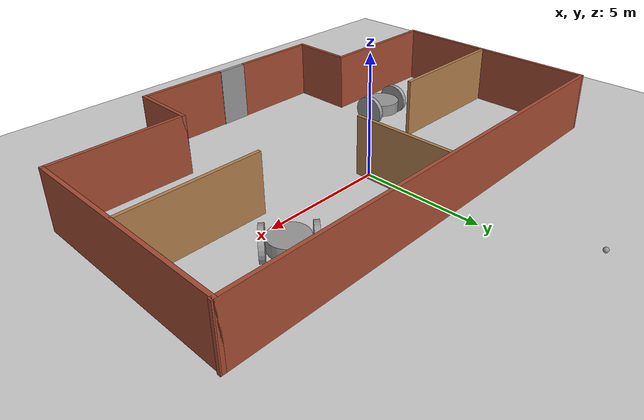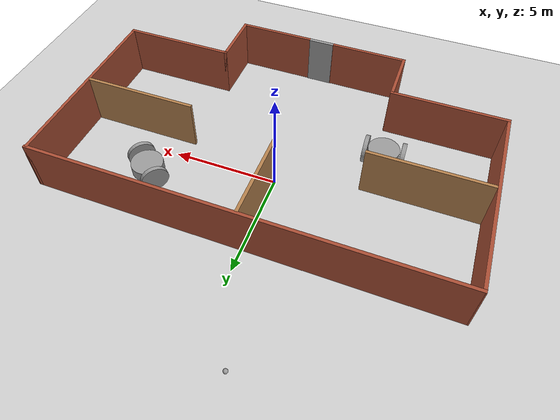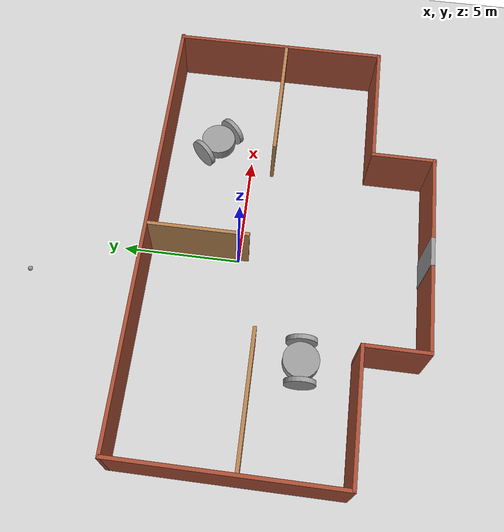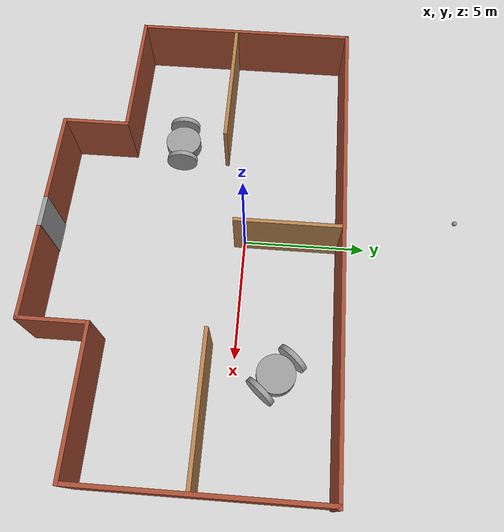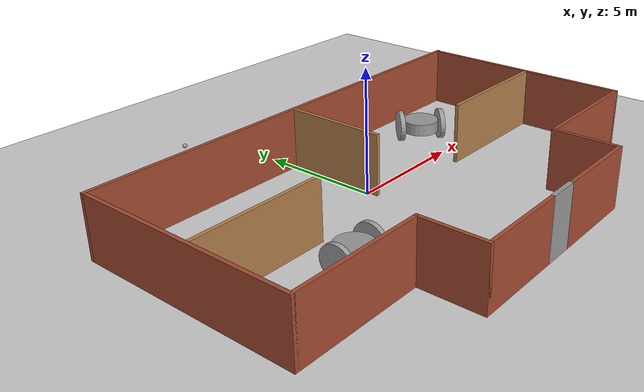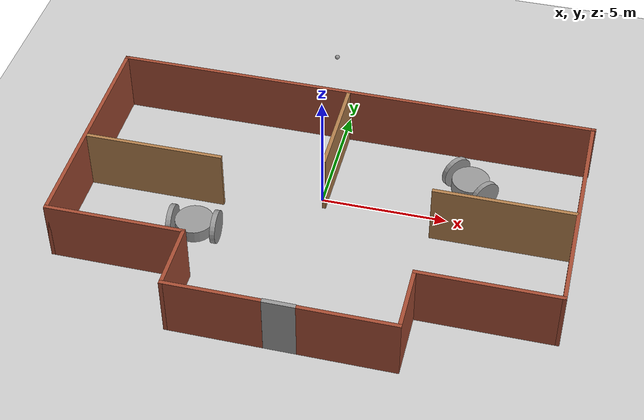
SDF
<sdf version="1.6">
 <world name="default">
  <plugin name="hello" filename="libhello.so"/>
  <light name="sun" type="directional">
   <pose>0 0 10 0 -0 0</pose>
   <diffuse>0.8 0.8 0.8 1</diffuse>
   <specular>0.2 0.2 0.2 1</specular>
   <attenuation>
    <range>1000</range>
    <constant>0.9</constant>
    <linear>0.01</linear>
    <quadratic>0.001</quadratic>
   </attenuation>
   <direction>-0.5 0.1 -0.9</direction>
  </light>
  <model name="ground_plane">
   <static>1</static>
   <link name="link">
    <collision name="collision">
     <geometry><plane><normal>0 0 1</normal><size>100 100</size></plane></geometry>
     <surface>
      <contact><collide_bitmask>65535</collide_bitmask></contact>
      <friction><ode><mu>100</mu><mu2>50</mu2></ode></friction>
     </surface>
    </collision>
    <visual name="visual">
     <cast_shadows>0</cast_shadows>
     <geometry><plane><normal>0 0 1</normal><size>100 100</size></plane></geometry>
     <material>
      <script><uri>file://media/materials/scripts/gazebo.material</uri><name>Gazebo/Grey</name></script>
     </material>
    </visual>
   </link>
  </model>
  <gravity>0 0 -9.8</gravity>
  <magnetic_field>6e-06 2.3e-05 -4.2e-05</magnetic_field>
  <atmosphere type="adiabatic"/>
  <physics name="default_physics" default="0" type="ode">
   <max_step_size>0.001</max_step_size>
   <real_time_factor>1</real_time_factor>
   <real_time_update_rate>1000</real_time_update_rate>
  </physics>
  <scene><ambient>0.4 0.4 0.4 1</ambient><background>0.7 0.7 0.7 1</background><shadows>1</shadows></scene>
  <spherical_coordinates>
   <surface_model>EARTH_WGS84</surface_model>
   <latitude_deg>0</latitude_deg>
   <longitude_deg>0</longitude_deg>
   <elevation>0</elevation>
   <heading_deg>0</heading_deg>
  </spherical_coordinates>
  <model name="Building">
   <pose>0.377101 -1.96916 0 0 -0 0</pose>
   <link name="Door_2">
    <collision name="Door_2_Collision">
     <geometry><box><size>1.25 0.17 2.5</size></box></geometry>
     <pose>0 0 1.25 0 -0 0</pose>
    </collision>
    <visual name="Door_2_Visual">
     <pose>0 0 1.25 0 -0 0</pose>
     <geometry><box><size>1.25 0.17 2.5</size></box></geometry>
     <material>
      <script><uri>file://media/materials/scripts/gazebo.material</uri><name>Gazebo/Grey</name></script>
     </material>
    </visual>
    <pose>-0.023717 -5.83901 0 0 -0 0</pose>
   </link>
   <link name="Wall_111">
    <collision name="Wall_111_Collision">
     <geometry><box><size>9.25 0.15 2.5</size></box></geometry>
     <pose>0 0 1.25 0 -0 0</pose>
    </collision>
    <visual name="Wall_111_Visual">
     <pose>0 0 1.25 0 -0 0</pose>
     <geometry><box><size>9.25 0.15 2.5</size></box></geometry>
     <material>
      <script><uri>file://media/materials/scripts/gazebo.material</uri><name>Gazebo/Bricks</name></script>
      <ambient>1 1 1 1</ambient>
     </material>
     <meta><layer>0</layer></meta>
    </visual>
    <pose>-9.675 1.3 0 0 0 -1.5708</pose>
   </link>
   <link name="Wall_112">
    <collision name="Wall_112_Collision">
     <geometry><box><size>5.5 0.15 2.5</size></box></geometry>
     <pose>0 0 1.25 0 -0 0</pose>
    </collision>
    <visual name="Wall_112_Visual">
     <pose>0 0 1.25 0 -0 0</pose>
     <geometry><box><size>5.5 0.15 2.5</size></box></geometry>
     <material>
      <script><uri>file://media/materials/scripts/gazebo.material</uri><name>Gazebo/Bricks</name></script>
      <ambient>1 1 1 1</ambient>
     </material>
     <meta><layer>0</layer></meta>
    </visual>
    <pose>-7 -3.25 0 0 -0 0</pose>
   </link>
   <link name="Wall_113">
    <collision name="Wall_113_Collision">
     <geometry><box><size>2.75 0.15 2.5</size></box></geometry>
     <pose>0 0 1.25 0 -0 0</pose>
    </collision>
    <visual name="Wall_113_Visual">
     <pose>0 0 1.25 0 -0 0</pose>
     <geometry><box><size>2.75 0.15 2.5</size></box></geometry>
     <material>
      <script><uri>file://media/materials/scripts/gazebo.material</uri><name>Gazebo/Bricks</name></script>
      <ambient>1 1 1 1</ambient>
     </material>
     <meta><layer>0</layer></meta>
    </visual>
    <pose>-4.325 -4.55 0 0 0 -1.5708</pose>
   </link>
   <link name="Wall_115">
    <collision name="Wall_115_Collision">
     <geometry><box><size>2.75 0.15 2.5</size></box></geometry>
     <pose>0 0 1.25 0 -0 0</pose>
    </collision>
    <visual name="Wall_115_Visual">
     <pose>0 0 1.25 0 -0 0</pose>
     <geometry><box><size>2.75 0.15 2.5</size></box></geometry>
     <material>
      <script><uri>file://media/materials/scripts/gazebo.material</uri><name>Gazebo/Bricks</name></script>
      <ambient>1 1 1 1</ambient>
     </material>
     <meta><layer>0</layer></meta>
    </visual>
    <pose>4.275 -4.55 0 0 -0 1.5708</pose>
   </link>
   <link name="Wall_117">
    <collision name="Wall_117_Collision">
     <geometry><box><size>5.5 0.15 2.5</size></box></geometry>
     <pose>0 0 1.25 0 -0 0</pose>
    </collision>
    <visual name="Wall_117_Visual">
     <pose>0 0 1.25 0 -0 0</pose>
     <geometry><box><size>5.5 0.15 2.5</size></box></geometry>
     <material>
      <script><uri>file://media/materials/scripts/gazebo.material</uri><name>Gazebo/Bricks</name></script>
      <ambient>1 1 1 1</ambient>
     </material>
     <meta><layer>0</layer></meta>
    </visual>
    <pose>6.95 -3.25 0 0 -0 0</pose>
   </link>
   <link name="Wall_119">
    <collision name="Wall_119_Collision">
     <geometry><box><size>9.25 0.15 2.5</size></box></geometry>
     <pose>0 0 1.25 0 -0 0</pose>
    </collision>
    <visual name="Wall_119_Visual">
     <pose>0 0 1.25 0 -0 0</pose>
     <geometry><box><size>9.25 0.15 2.5</size></box></geometry>
     <material>
      <script><uri>file://media/materials/scripts/gazebo.material</uri><name>Gazebo/Bricks</name></script>
      <ambient>1 1 1 1</ambient>
     </material>
     <meta><layer>0</layer></meta>
    </visual>
    <pose>9.625 1.3 0 0 -0 1.5708</pose>
   </link>
   <link name="Wall_121">
    <collision name="Wall_121_Collision">
     <geometry><box><size>19.5 0.15 2.5</size></box></geometry>
     <pose>0 0 1.25 0 -0 0</pose>
    </collision>
    <visual name="Wall_121_Visual">
     <pose>0 0 1.25 0 -0 0</pose>
     <geometry><box><size>19.5 0.15 2.5</size></box></geometry>
     <material>
      <script><uri>file://media/materials/scripts/gazebo.material</uri><name>Gazebo/Bricks</name></script>
      <ambient>1 1 1 1</ambient>
     </material>
     <meta><layer>0</layer></meta>
    </visual>
    <pose>0 5.85 0 0 -0 0</pose>
   </link>
   <link name="Wall_123">
    <collision name="Wall_123_Collision">
     <geometry><box><size>3.75 0.15 2.5</size></box></geometry>
     <pose>0 0 1.25 0 -0 0</pose>
    </collision>
    <visual name="Wall_123_Visual">
     <pose>0 0 1.25 0 -0 0</pose>
     <geometry><box><size>3.75 0.15 2.5</size></box></geometry>
     <material>
      <script><uri>file://media/materials/scripts/gazebo.material</uri><name>Gazebo/Bricks</name></script>
      <ambient>1 1 1 1</ambient>
     </material>
     <meta><layer>0</layer></meta>
    </visual>
    <pose>-2.525 -5.85 0 0 -0 0</pose>
   </link>
   <link name="Wall_125">
    <collision name="Wall_125_Collision">
     <geometry><box><size>3.75 0.15 2.5</size></box></geometry>
     <pose>0 0 1.25 0 -0 0</pose>
    </collision>
    <visual name="Wall_125_Visual">
     <pose>0 0 1.25 0 -0 0</pose>
     <geometry><box><size>3.75 0.15 2.5</size></box></geometry>
     <material>
      <script><uri>file://media/materials/scripts/gazebo.material</uri><name>Gazebo/Bricks</name></script>
      <ambient>1 1 1 1</ambient>
     </material>
     <meta><layer>0</layer></meta>
    </visual>
    <pose>2.475 -5.85 0 0 -0 3.14159</pose>
   </link>
   <link name="Wall_129">
    <collision name="Wall_129_Collision">
     <geometry><box><size>4.25 0.15 2.5</size></box></geometry>
     <pose>0 0 1.25 0 -0 0</pose>
    </collision>
    <visual name="Wall_129_Visual">
     <pose>0 0 1.25 0 -0 0</pose>
     <geometry><box><size>4.25 0.15 2.5</size></box></geometry>
     <material>
      <script><uri>file://media/materials/scripts/gazebo.material</uri><name>Gazebo/Wood</name></script>
      <ambient>0.435294 0.796078 0.67451 1</ambient>
     </material>
     <meta><layer>0</layer></meta>
    </visual>
    <pose>-0.218061 3.67477 0 0 0 -1.5708</pose>
   </link>
   <link name="Wall_134">
    <collision name="Wall_134_Collision">
     <geometry><box><size>5.5 0.15 2.5</size></box></geometry>
     <pose>0 0 1.25 0 -0 0</pose>
    </collision>
    <visual name="Wall_134_Visual">
     <pose>0 0 1.25 0 -0 0</pose>
     <geometry><box><size>5.5 0.15 2.5</size></box></geometry>
     <material>
      <script><uri>file://media/materials/scripts/gazebo.material</uri><name>Gazebo/Wood</name></script>
      <ambient>0.760784 0.662745 0.627451 1</ambient>
     </material>
     <meta><layer>0</layer></meta>
    </visual>
    <pose>-6.86169 0.887902 0 0 -0 0</pose>
   </link>
   <link name="Wall_136">
    <collision name="Wall_136_Collision">
     <geometry><box><size>5.5 0.15 2.5</size></box></geometry>
     <pose>0 0 1.25 0 -0 0</pose>
    </collision>
    <visual name="Wall_136_Visual">
     <pose>0 0 1.25 0 -0 0</pose>
     <geometry><box><size>5.5 0.15 2.5</size></box></geometry>
     <material>
      <script><uri>file://media/materials/scripts/gazebo.material</uri><name>Gazebo/Wood</name></script>
      <ambient>0.760784 0.662745 0.627451 1</ambient>
     </material>
     <meta><layer>0</layer></meta>
    </visual>
    <pose>6.86346 1.00246 0 0 -0 3.14159</pose>
   </link>
   <static>1</static>
  </model>
  <model name="wheel_robot">
   <link name="link_1">
    <pose>0.013313 0 -0 0 -0 0</pose>
    <inertial>
     <mass>1</mass>
     <inertia><ixx>0.145833</ixx><ixy>0</ixy><ixz>0</ixz><iyy>0.145833</iyy><iyz>0</iyz><izz>0.125</izz></inertia>
    </inertial>
    <visual name="visual">
     <geometry><cylinder><radius>0.75</radius><length>0.5</length></cylinder></geometry>
     <material>
      <lighting>1</lighting>
      <script><uri>file://media/materials/scripts/gazebo.material</uri><name>Gazebo/Grey</name></script>
      <shader type="pixel"><normal_map>__default__</normal_map></shader>
      <ambient>0.3 0.3 0.3 1</ambient>
      <diffuse>0.7 0.7 0.7 1</diffuse>
      <specular>0.01 0.01 0.01 1</specular>
      <emissive>0 0 0 1</emissive>
     </material>
    </visual>
    <collision name="collision">
     <geometry><cylinder><radius>0.75</radius><length>0.5</length></cylinder></geometry>
     <surface>
      <friction>
       <ode><mu>1</mu><mu2>1</mu2><fdir1>0 0 0</fdir1><slip1>0</slip1><slip2>0</slip2></ode>
       <torsional>
        <coefficient>1</coefficient>
        <patch_radius>0</patch_radius>
        <surface_radius>0</surface_radius>
        <use_patch_radius>1</use_patch_radius>
        <ode><slip>0</slip></ode>
       </torsional>
      </friction>
      <bounce><restitution_coefficient>0</restitution_coefficient><threshold>1e+06</threshold></bounce>
      <contact>
       <collide_without_contact>0</collide_without_contact>
       <collide_without_contact_bitmask>1</collide_without_contact_bitmask>
       <collide_bitmask>1</collide_bitmask>
       <ode>
        <soft_cfm>0</soft_cfm>
        <soft_erp>0.2</soft_erp>
        <kp>1e+13</kp>
        <kd>1</kd>
        <max_vel>0.01</max_vel>
        <min_depth>0</min_depth>
       </ode>
       <bullet>
        <split_impulse>1</split_impulse>
        <split_impulse_penetration_threshold>-0.01</split_impulse_penetration_threshold>
        <soft_cfm>0</soft_cfm>
        <soft_erp>0.2</soft_erp>
        <kp>1e+13</kp>
        <kd>1</kd>
       </bullet>
      </contact>
     </surface>
    </collision>
   </link>
   <link name="link_2">
    <pose>-0.876687 0 -0 0 -0 0</pose>
    <inertial>
     <mass>1</mass>
     <inertia><ixx>0.145833</ixx><ixy>0</ixy><ixz>0</ixz><iyy>0.145833</iyy><iyz>0</iyz><izz>0.125</izz></inertia>
    </inertial>
    <visual name="visual">
     <pose>0 0 0 0 1.5707 0</pose>
     <geometry><cylinder><radius>0.65</radius><length>0.2</length></cylinder></geometry>
     <material>
      <lighting>1</lighting>
      <script><uri>file://media/materials/scripts/gazebo.material</uri><name>Gazebo/Grey</name></script>
      <shader type="pixel"><normal_map>__default__</normal_map></shader>
      <ambient>0.3 0.3 0.3 1</ambient>
      <diffuse>0.7 0.7 0.7 1</diffuse>
      <specular>0.01 0.01 0.01 1</specular>
      <emissive>0 0 0 1</emissive>
     </material>
    </visual>
    <collision name="collision">
     <pose>0 0 0 0 1.5707 0</pose>
     <geometry><cylinder><radius>0.65</radius><length>0.2</length></cylinder></geometry>
     <surface>
      <friction>
       <ode><mu>1</mu><mu2>1</mu2><fdir1>0 0 0</fdir1><slip1>0</slip1><slip2>0</slip2></ode>
       <torsional>
        <coefficient>1</coefficient>
        <patch_radius>0</patch_radius>
        <surface_radius>0</surface_radius>
        <use_patch_radius>1</use_patch_radius>
        <ode><slip>0</slip></ode>
       </torsional>
      </friction>
      <bounce><restitution_coefficient>0</restitution_coefficient><threshold>1e+06</threshold></bounce>
      <contact>
       <collide_without_contact>0</collide_without_contact>
       <collide_without_contact_bitmask>1</collide_without_contact_bitmask>
       <collide_bitmask>1</collide_bitmask>
       <ode>
        <soft_cfm>0</soft_cfm>
        <soft_erp>0.2</soft_erp>
        <kp>1e+13</kp>
        <kd>1</kd>
        <max_vel>0.01</max_vel>
        <min_depth>0</min_depth>
       </ode>
       <bullet>
        <split_impulse>1</split_impulse>
        <split_impulse_penetration_threshold>-0.01</split_impulse_penetration_threshold>
        <soft_cfm>0</soft_cfm>
        <soft_erp>0.2</soft_erp>
        <kp>1e+13</kp>
        <kd>1</kd>
       </bullet>
      </contact>
     </surface>
    </collision>
   </link>
   <link name="link_2_clone">
    <pose>0.863376 0 -0 0 -0 0</pose>
    <inertial>
     <mass>1</mass>
     <inertia><ixx>0.145833</ixx><ixy>0</ixy><ixz>0</ixz><iyy>0.145833</iyy><iyz>0</iyz><izz>0.125</izz></inertia>
    </inertial>
    <visual name="visual">
     <pose>0 0 0 0 1.5707 0</pose>
     <geometry><cylinder><radius>0.65</radius><length>0.2</length></cylinder></geometry>
     <material>
      <lighting>1</lighting>
      <script><uri>file://media/materials/scripts/gazebo.material</uri><name>Gazebo/Grey</name></script>
      <shader type="pixel"><normal_map>__default__</normal_map></shader>
      <ambient>0.3 0.3 0.3 1</ambient>
      <diffuse>0.7 0.7 0.7 1</diffuse>
      <specular>0.01 0.01 0.01 1</specular>
      <emissive>0 0 0 1</emissive>
     </material>
    </visual>
    <collision name="collision">
     <pose>0 0 0 0 1.5707 0</pose>
     <geometry><cylinder><radius>0.65</radius><length>0.2</length></cylinder></geometry>
     <surface>
      <friction>
       <ode><mu>1</mu><mu2>1</mu2><fdir1>0 0 0</fdir1><slip1>0</slip1><slip2>0</slip2></ode>
       <torsional>
        <coefficient>1</coefficient>
        <patch_radius>0</patch_radius>
        <surface_radius>0</surface_radius>
        <use_patch_radius>1</use_patch_radius>
        <ode><slip>0</slip></ode>
       </torsional>
      </friction>
      <bounce><restitution_coefficient>0</restitution_coefficient><threshold>1e+06</threshold></bounce>
      <contact>
       <collide_without_contact>0</collide_without_contact>
       <collide_without_contact_bitmask>1</collide_without_contact_bitmask>
       <collide_bitmask>1</collide_bitmask>
       <ode>
        <soft_cfm>0</soft_cfm>
        <soft_erp>0.2</soft_erp>
        <kp>1e+13</kp>
        <kd>1</kd>
        <max_vel>0.01</max_vel>
        <min_depth>0</min_depth>
       </ode>
       <bullet>
        <split_impulse>1</split_impulse>
        <split_impulse_penetration_threshold>-0.01</split_impulse_penetration_threshold>
        <soft_cfm>0</soft_cfm>
        <soft_erp>0.2</soft_erp>
        <kp>1e+13</kp>
        <kd>1</kd>
       </bullet>
      </contact>
     </surface>
    </collision>
   </link>
   <joint name="link_1_JOINT_1" type="revolute">
    <parent>link_1</parent>
    <child>link_2</child>
    <axis>
     <xyz>0 0 1</xyz>
     <use_parent_model_frame>0</use_parent_model_frame>
     <limit>
      <lower>-1.79769e+308</lower>
      <upper>1.79769e+308</upper>
      <effort>-1</effort>
      <velocity>-1</velocity>
     </limit>
     <dynamics>
      <spring_reference>0</spring_reference>
      <spring_stiffness>0</spring_stiffness>
      <damping>0</damping>
     </dynamics>
    </axis>
    <physics>
     <ode><limit><cfm>0</cfm><erp>0.2</erp></limit><suspension><cfm>0</cfm><erp>0.2</erp></suspension></ode>
    </physics>
   </joint>
   <joint name="link_1_JOINT_2" type="revolute">
    <parent>link_1</parent>
    <child>link_2_clone</child>
    <axis>
     <xyz>0 0 -1</xyz>
     <use_parent_model_frame>0</use_parent_model_frame>
     <limit>
      <lower>-1.79769e+308</lower>
      <upper>1.79769e+308</upper>
      <effort>-1</effort>
      <velocity>-1</velocity>
     </limit>
     <dynamics>
      <spring_reference>0</spring_reference>
      <spring_stiffness>0</spring_stiffness>
      <damping>0</damping>
     </dynamics>
    </axis>
    <physics>
     <ode><limit><cfm>0</cfm><erp>0.2</erp></limit><suspension><cfm>0</cfm><erp>0.2</erp></suspension></ode>
    </physics>
   </joint>
   <static>0</static>
   <pose>-4.32823 -3.04909 0.65 0.000532 -1e-06 0.041506</pose>
  </model>
  <model name="wheel_robot_0">
   <link name="link_1">
    <pose>0.013313 0 -0 0 -0 0</pose>
    <inertial>
     <mass>1</mass>
     <inertia><ixx>0.145833</ixx><ixy>0</ixy><ixz>0</ixz><iyy>0.145833</iyy><iyz>0</iyz><izz>0.125</izz></inertia>
    </inertial>
    <visual name="visual">
     <geometry><cylinder><radius>0.75</radius><length>0.5</length></cylinder></geometry>
     <material>
      <lighting>1</lighting>
      <script><uri>file://media/materials/scripts/gazebo.material</uri><name>Gazebo/Grey</name></script>
      <shader type="pixel"><normal_map>__default__</normal_map></shader>
      <ambient>0.3 0.3 0.3 1</ambient>
      <diffuse>0.7 0.7 0.7 1</diffuse>
      <specular>0.01 0.01 0.01 1</specular>
      <emissive>0 0 0 1</emissive>
     </material>
    </visual>
    <collision name="collision">
     <geometry><cylinder><radius>0.75</radius><length>0.5</length></cylinder></geometry>
     <surface>
      <friction>
       <ode><mu>1</mu><mu2>1</mu2><fdir1>0 0 0</fdir1><slip1>0</slip1><slip2>0</slip2></ode>
       <torsional>
        <coefficient>1</coefficient>
        <patch_radius>0</patch_radius>
        <surface_radius>0</surface_radius>
        <use_patch_radius>1</use_patch_radius>
        <ode><slip>0</slip></ode>
       </torsional>
      </friction>
      <bounce><restitution_coefficient>0</restitution_coefficient><threshold>1e+06</threshold></bounce>
      <contact>
       <collide_without_contact>0</collide_without_contact>
       <collide_without_contact_bitmask>1</collide_without_contact_bitmask>
       <collide_bitmask>1</collide_bitmask>
       <ode>
        <soft_cfm>0</soft_cfm>
        <soft_erp>0.2</soft_erp>
        <kp>1e+13</kp>
        <kd>1</kd>
        <max_vel>0.01</max_vel>
        <min_depth>0</min_depth>
       </ode>
       <bullet>
        <split_impulse>1</split_impulse>
        <split_impulse_penetration_threshold>-0.01</split_impulse_penetration_threshold>
        <soft_cfm>0</soft_cfm>
        <soft_erp>0.2</soft_erp>
        <kp>1e+13</kp>
        <kd>1</kd>
       </bullet>
      </contact>
     </surface>
    </collision>
   </link>
   <link name="link_2">
    <pose>-0.876687 0 -0 0 -0 0</pose>
    <inertial>
     <mass>1</mass>
     <inertia><ixx>0.145833</ixx><ixy>0</ixy><ixz>0</ixz><iyy>0.145833</iyy><iyz>0</iyz><izz>0.125</izz></inertia>
    </inertial>
    <visual name="visual">
     <pose>0 0 0 0 1.5707 0</pose>
     <geometry><cylinder><radius>0.65</radius><length>0.2</length></cylinder></geometry>
     <material>
      <lighting>1</lighting>
      <script><uri>file://media/materials/scripts/gazebo.material</uri><name>Gazebo/Grey</name></script>
      <shader type="pixel"><normal_map>__default__</normal_map></shader>
      <ambient>0.3 0.3 0.3 1</ambient>
      <diffuse>0.7 0.7 0.7 1</diffuse>
      <specular>0.01 0.01 0.01 1</specular>
      <emissive>0 0 0 1</emissive>
     </material>
    </visual>
    <collision name="collision">
     <pose>0 0 0 0 1.5707 0</pose>
     <geometry><cylinder><radius>0.65</radius><length>0.2</length></cylinder></geometry>
     <surface>
      <friction>
       <ode><mu>1</mu><mu2>1</mu2><fdir1>0 0 0</fdir1><slip1>0</slip1><slip2>0</slip2></ode>
       <torsional>
        <coefficient>1</coefficient>
        <patch_radius>0</patch_radius>
        <surface_radius>0</surface_radius>
        <use_patch_radius>1</use_patch_radius>
        <ode><slip>0</slip></ode>
       </torsional>
      </friction>
      <bounce><restitution_coefficient>0</restitution_coefficient><threshold>1e+06</threshold></bounce>
      <contact>
       <collide_without_contact>0</collide_without_contact>
       <collide_without_contact_bitmask>1</collide_without_contact_bitmask>
       <collide_bitmask>1</collide_bitmask>
       <ode>
        <soft_cfm>0</soft_cfm>
        <soft_erp>0.2</soft_erp>
        <kp>1e+13</kp>
        <kd>1</kd>
        <max_vel>0.01</max_vel>
        <min_depth>0</min_depth>
       </ode>
       <bullet>
        <split_impulse>1</split_impulse>
        <split_impulse_penetration_threshold>-0.01</split_impulse_penetration_threshold>
        <soft_cfm>0</soft_cfm>
        <soft_erp>0.2</soft_erp>
        <kp>1e+13</kp>
        <kd>1</kd>
       </bullet>
      </contact>
     </surface>
    </collision>
   </link>
   <link name="link_2_clone">
    <pose>0.863376 0 -0 0 -0 0</pose>
    <inertial>
     <mass>1</mass>
     <inertia><ixx>0.145833</ixx><ixy>0</ixy><ixz>0</ixz><iyy>0.145833</iyy><iyz>0</iyz><izz>0.125</izz></inertia>
    </inertial>
    <visual name="visual">
     <pose>0 0 0 0 1.5707 0</pose>
     <geometry><cylinder><radius>0.65</radius><length>0.2</length></cylinder></geometry>
     <material>
      <lighting>1</lighting>
      <script><uri>file://media/materials/scripts/gazebo.material</uri><name>Gazebo/Grey</name></script>
      <shader type="pixel"><normal_map>__default__</normal_map></shader>
      <ambient>0.3 0.3 0.3 1</ambient>
      <diffuse>0.7 0.7 0.7 1</diffuse>
      <specular>0.01 0.01 0.01 1</specular>
      <emissive>0 0 0 1</emissive>
     </material>
    </visual>
    <collision name="collision">
     <pose>0 0 0 0 1.5707 0</pose>
     <geometry><cylinder><radius>0.65</radius><length>0.2</length></cylinder></geometry>
     <surface>
      <friction>
       <ode><mu>1</mu><mu2>1</mu2><fdir1>0 0 0</fdir1><slip1>0</slip1><slip2>0</slip2></ode>
       <torsional>
        <coefficient>1</coefficient>
        <patch_radius>0</patch_radius>
        <surface_radius>0</surface_radius>
        <use_patch_radius>1</use_patch_radius>
        <ode><slip>0</slip></ode>
       </torsional>
      </friction>
      <bounce><restitution_coefficient>0</restitution_coefficient><threshold>1e+06</threshold></bounce>
      <contact>
       <collide_without_contact>0</collide_without_contact>
       <collide_without_contact_bitmask>1</collide_without_contact_bitmask>
       <collide_bitmask>1</collide_bitmask>
       <ode>
        <soft_cfm>0</soft_cfm>
        <soft_erp>0.2</soft_erp>
        <kp>1e+13</kp>
        <kd>1</kd>
        <max_vel>0.01</max_vel>
        <min_depth>0</min_depth>
       </ode>
       <bullet>
        <split_impulse>1</split_impulse>
        <split_impulse_penetration_threshold>-0.01</split_impulse_penetration_threshold>
        <soft_cfm>0</soft_cfm>
        <soft_erp>0.2</soft_erp>
        <kp>1e+13</kp>
        <kd>1</kd>
       </bullet>
      </contact>
     </surface>
    </collision>
   </link>
   <joint name="link_1_JOINT_1" type="revolute">
    <parent>link_1</parent>
    <child>link_2</child>
    <axis>
     <xyz>0 0 1</xyz>
     <use_parent_model_frame>0</use_parent_model_frame>
     <limit>
      <lower>-1.79769e+308</lower>
      <upper>1.79769e+308</upper>
      <effort>-1</effort>
      <velocity>-1</velocity>
     </limit>
     <dynamics>
      <spring_reference>0</spring_reference>
      <spring_stiffness>0</spring_stiffness>
      <damping>0</damping>
     </dynamics>
    </axis>
    <physics>
     <ode><limit><cfm>0</cfm><erp>0.2</erp></limit><suspension><cfm>0</cfm><erp>0.2</erp></suspension></ode>
    </physics>
   </joint>
   <joint name="link_1_JOINT_2" type="revolute">
    <parent>link_1</parent>
    <child>link_2_clone</child>
    <axis>
     <xyz>0 0 -1</xyz>
     <use_parent_model_frame>0</use_parent_model_frame>
     <limit>
      <lower>-1.79769e+308</lower>
      <upper>1.79769e+308</upper>
      <effort>-1</effort>
      <velocity>-1</velocity>
     </limit>
     <dynamics>
      <spring_reference>0</spring_reference>
      <spring_stiffness>0</spring_stiffness>
      <damping>0</damping>
     </dynamics>
    </axis>
    <physics>
     <ode><limit><cfm>0</cfm><erp>0.2</erp></limit><suspension><cfm>0</cfm><erp>0.2</erp></suspension></ode>
    </physics>
   </joint>
   <static>0</static>
   <pose>5.62711 1.6442 0.65 0.000451 -1e-06 -0.710941</pose>
  </model>
  <model name="my_ball">
   <link name="link_0">
    <inertial>
     <mass>1</mass>
     <inertia><ixx>0.1</ixx><ixy>0</ixy><ixz>0</ixz><iyy>0.1</iyy><iyz>0</iyz><izz>0.1</izz></inertia>
    </inertial>
    <visual name="visual">
     <geometry><sphere><radius>0.1</radius></sphere></geometry>
     <material>
      <lighting>1</lighting>
      <script><uri>file://media/materials/scripts/gazebo.material</uri><name>Gazebo/Grey</name></script>
      <shader type="pixel"><normal_map>__default__</normal_map></shader>
      <ambient>1 1 1 1</ambient>
      <diffuse>1 1 1 1</diffuse>
      <specular>1 1 1 1</specular>
      <emissive>1 1 1 1</emissive>
     </material>
    </visual>
    <collision name="collision">
     <geometry><sphere><radius>0.1</radius></sphere></geometry>
     <surface>
      <friction>
       <ode><mu>1</mu><mu2>1</mu2><fdir1>0 0 0</fdir1><slip1>0</slip1><slip2>0</slip2></ode>
       <torsional>
        <coefficient>1</coefficient>
        <patch_radius>0</patch_radius>
        <surface_radius>0</surface_radius>
        <use_patch_radius>1</use_patch_radius>
        <ode><slip>0</slip></ode>
       </torsional>
      </friction>
      <bounce><restitution_coefficient>0</restitution_coefficient><threshold>1e+06</threshold></bounce>
      <contact>
       <collide_without_contact>0</collide_without_contact>
       <collide_without_contact_bitmask>1</collide_without_contact_bitmask>
       <collide_bitmask>1</collide_bitmask>
       <ode>
        <soft_cfm>0</soft_cfm>
        <soft_erp>0.2</soft_erp>
        <kp>1e+13</kp>
        <kd>1</kd>
        <max_vel>0.01</max_vel>
        <min_depth>0</min_depth>
       </ode>
       <bullet>
        <split_impulse>1</split_impulse>
        <split_impulse_penetration_threshold>-0.01</split_impulse_penetration_threshold>
        <soft_cfm>0</soft_cfm>
        <soft_erp>0.2</soft_erp>
        <kp>1e+13</kp>
        <kd>1</kd>
       </bullet>
      </contact>
     </surface>
    </collision>
   </link>
   <static>0</static>
   <pose>-1.50052 8.87337 0.1 0 -0 0</pose>
  </model>
 </world>
</sdf>
